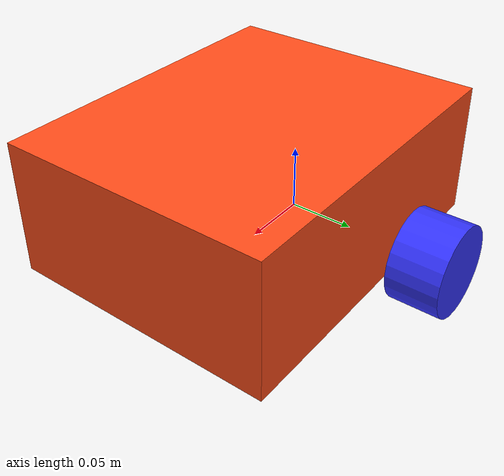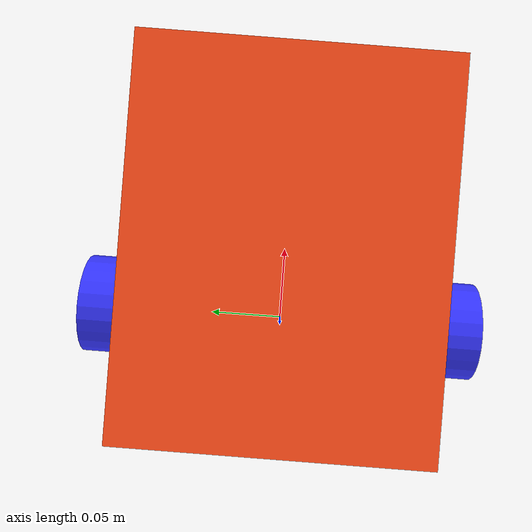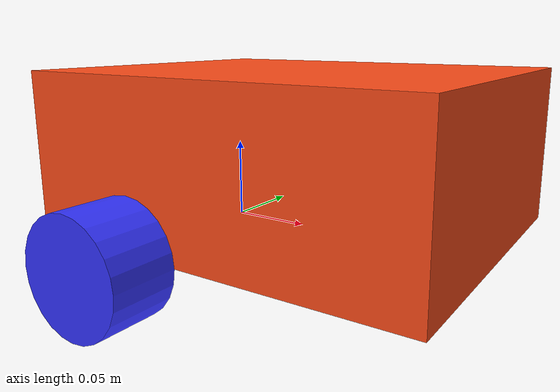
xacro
<?xml version="1.0"?>
<robot xmlns:xacro="http://www.ros.org/wiki/xacro" >

    <xacro:include filename="inertial_macros.xacro"/>

    <material name="white">
        <color rgba="1 1 1 1" />
    </material>

    <material name="orange">
        <color rgba="1 0.3 0.1 1" />
    </material>

    <material name="blue">
        <color rgba="0.2 0.2 1 1" />
    </material>

    <material name="black">
        <color rgba="0 0 0 1" />
    </material>

    <!-- BASE LINK -->

    <link name="base_link">

    </link>

    <!-- BASE_FOOTPRINT LINK -->

    <joint name="base_footprint_joint" type="fixed">
        <parent link="base_link"/>
        <child link="base_footprint"/>
        <origin xyz="0 0 0" rpy="0 0 0"/>
    </joint>

    <link name="base_footprint">
    </link>

    <!-- CHASSIS LINK -->

    <joint name="chassis_joint" type="fixed">
        <parent link="base_link"/>
        <child link="chassis"/>
        <origin xyz="-0.075 0 0"/>
    </joint>

    <link name="chassis">
        <visual>
            <origin xyz="0.125 0 0.05"/>
            <geometry>
                <box size="0.25 0.2 0.10"/>
            </geometry>
            <material name = "orange"/>
        </visual>
        <collision>
             <origin xyz="0.125 0 0.05"/>
            <geometry>
                <box size="0.25 0.2 0.10"/>
            </geometry>
        </collision>
        <xacro:inertial_box mass="0.5" x="0.25" y="0.20" z="0.10">
            <origin xyz="0.125 0 0.05" rpy="0 0 0"/>
        </xacro:inertial_box>
    </link>

    <gazebo reference="chassis">
        <material>Gazebo/Orange</material>
    </gazebo>

    <!-- LEFT WHEEL LINK -->

    <joint name="left_wheel_joint" type="continuous">
        <parent link="base_link"/>
        <child link="left_wheel"/>
        <origin xyz="0 0.12 0" rpy="-${pi/2} 0 0"/>
        <axis xyz="0 0 1"/>
    </joint>

    <link name="left_wheel">
        <visual>
            <geometry>
                <cylinder radius="0.035" length="0.04"/>
            </geometry>
            <material name="blue"/>
        </visual>
        <collision>
            <geometry>
                <cylinder radius="0.035" length="0.04"/>
            </geometry>
        </collision>
        <xacro:inertial_cylinder mass="0.1" length="0.04" radius="0.035">
            <origin xyz="0 0 0" rpy="0 0 0"/>
        </xacro:inertial_cylinder>
    </link>

    <gazebo reference="left_wheel">
        <material>Gazebo/Blue</material>
    </gazebo>

    <!-- RIGHT WHEEL LINK -->

    <joint name="right_wheel_joint" type="continuous">
        <parent link="base_link"/>
        <child link="right_wheel"/>
        <origin xyz="0 -0.12 0" rpy="${pi/2} 0 0"/>
        <axis xyz="0 0 -1"/>
    </joint>

    <link name="right_wheel">
        <visual>
            <geometry>
                <cylinder radius="0.035" length="0.04"/>
            </geometry>
            <material name="blue"/>
        </visual>
        <collision>
            <geometry>
                <cylinder radius="0.035" length="0.04"/>
            </geometry>
        </collision>
        <xacro:inertial_cylinder mass="0.1" length="0.04" radius="0.035">
            <origin xyz="0 0 0" rpy="0 0 0"/>
        </xacro:inertial_cylinder>
    </link>

    <gazebo reference="right_wheel">
        <material>Gazebo/Blue</material>
    </gazebo>

    <!-- CASTOR WHEEL LINK -->

    <joint name="castor_wheel_joint" type="fixed">
        <parent link="chassis"/>
        <child link="castor_wheel"/>
        <origin xyz="0.20 0 0"/>
    </joint>

    <link name="castor_wheel">
        <visual>
            <geometry>
                <sphere radius="0.0275"/>
            </geometry>
            <material name="black"/>
        </visual>
        <collision>
            <geometry>
                <sphere radius="0.0275"/>
            </geometry>
        </collision>
        <xacro:inertial_sphere mass="0.1" radius="0.0275">
            <origin xyz="0 0 0" rpy="0 0 0"/>
        </xacro:inertial_sphere>
    </link>

    <gazebo reference="castor_wheel">
        <material>Gazebo/Black</material>
        <mu1 value="0.001"/>
        <mu2 value="0.001"/>
    </gazebo>

</robot>
